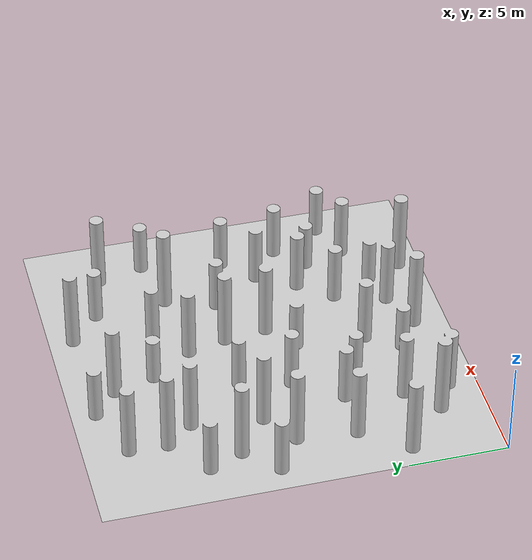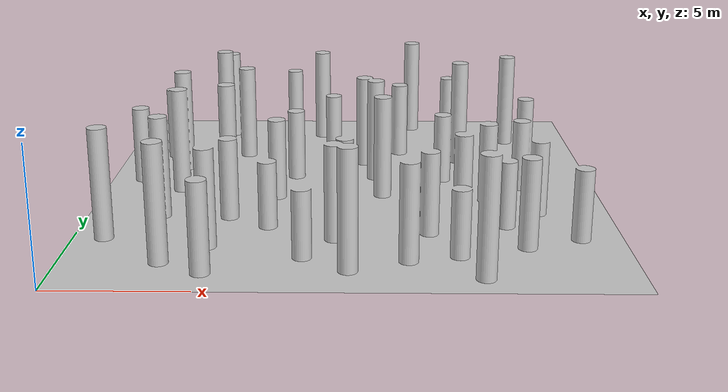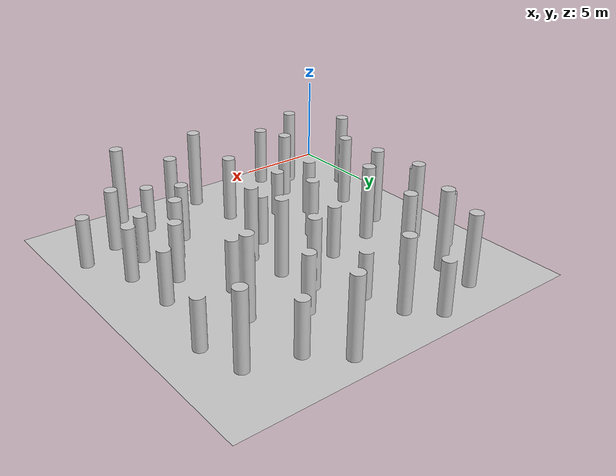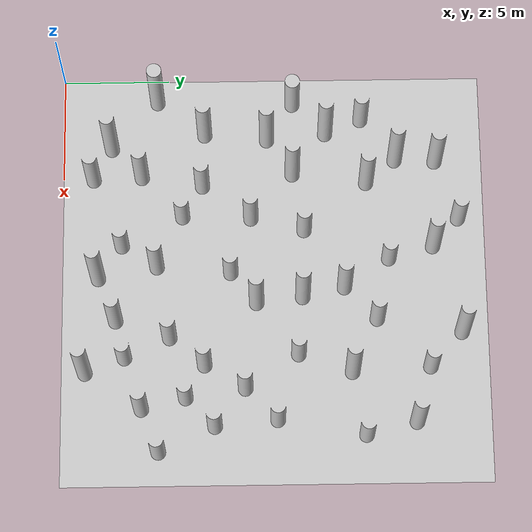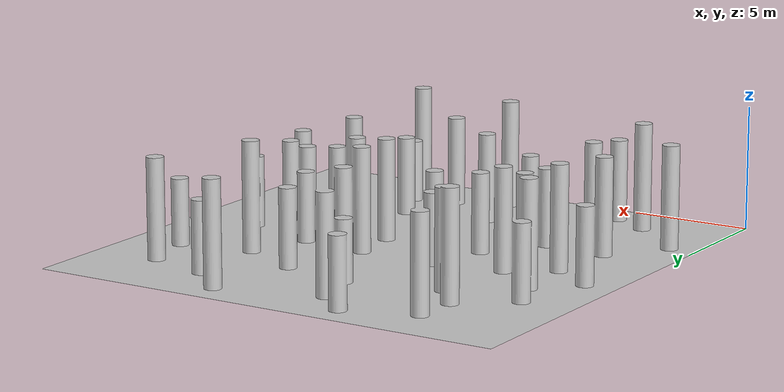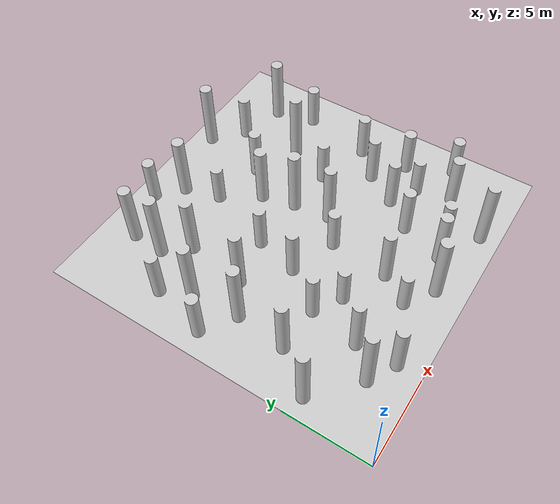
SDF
<?xml version="1.0" ?>
<sdf version="1.9">
  <model name="world_45_20">
    <static>true</static>
    <link name="link">
      <collision name="collision">
        <geometry>
          <mesh>
            <uri>model://world_45_20/meshes/world_45_20.stl</uri>
          </mesh>
        </geometry>
      </collision>
      <visual name="visual">
        <geometry>
          <mesh>
            <uri>model://world_45_20/meshes/world_45_20.stl</uri>
          </mesh>
        </geometry>
        <material>
            <ambient>0.8 0.8 0.8 1</ambient>
            <diffuse>0.8 0.8 0.8 1</diffuse>
            <specular>0.8 0.8 0.8 1</specular>
        </material>
      </visual>
    </link>
  </model>
</sdf>
